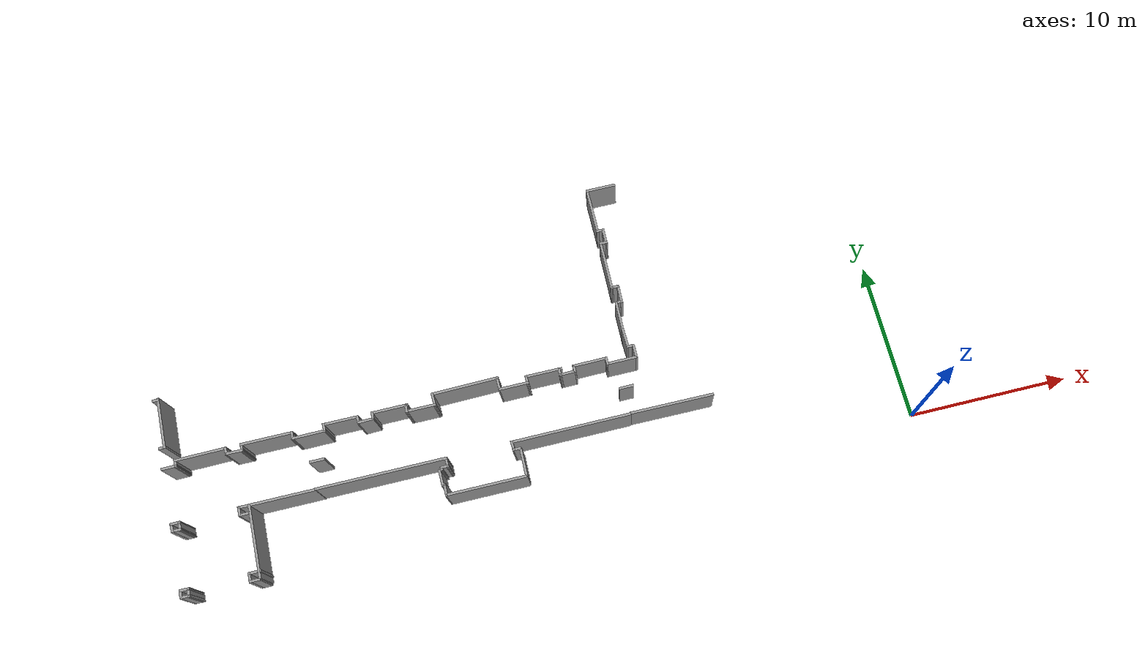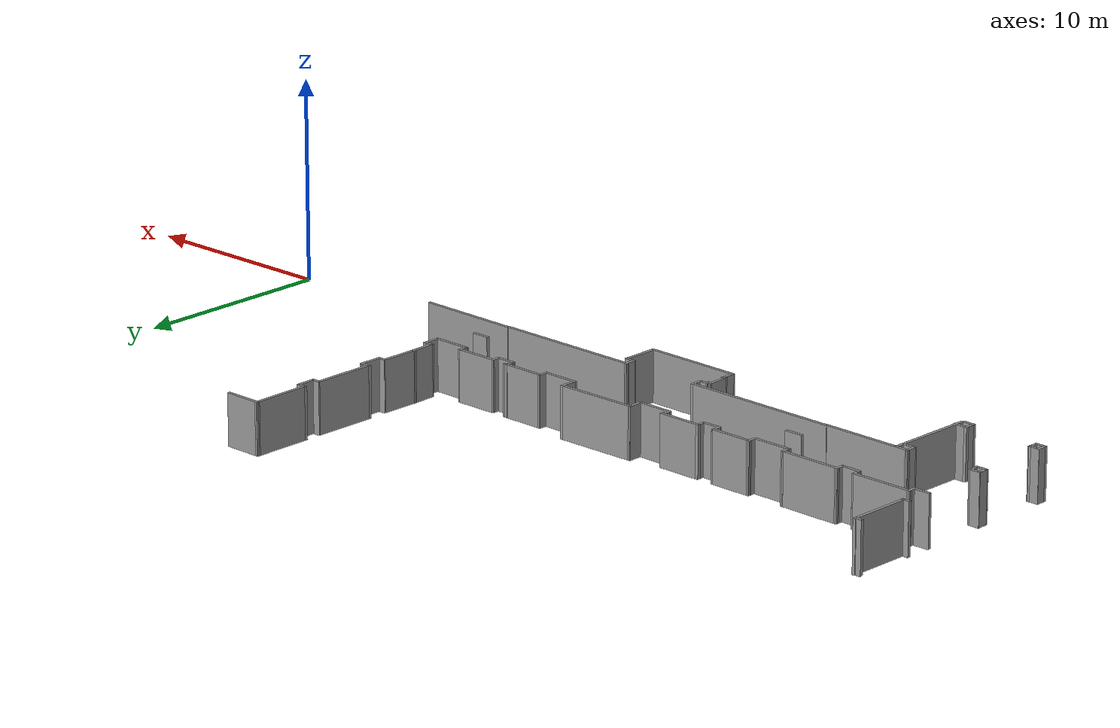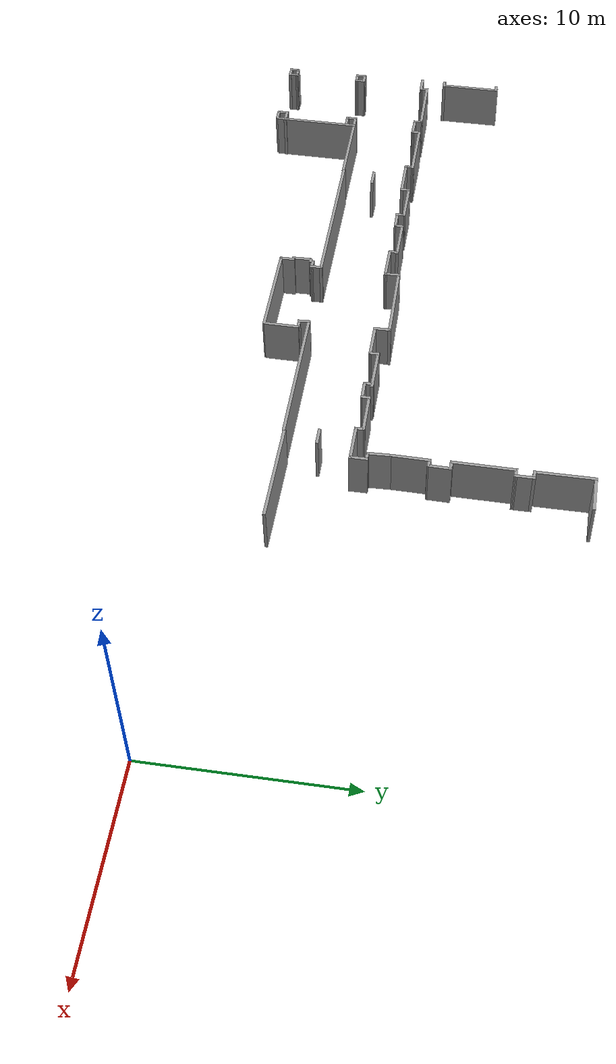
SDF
<sdf version="1.7">
 <model name="TD1-Mapa">
  <pose>-6.249136 -5.50363 0 0 -0 0</pose>
  <link name="Wall_100">
   <collision name="Wall_100_Collision">
    <geometry><box><size>4.617933 0.15 2.5</size></box></geometry>
    <pose>0 0 1.25 0 -0 0</pose>
   </collision>
   <visual name="Wall_100_Visual">
    <pose>0 0 1.25 0 -0 0</pose>
    <geometry><box><size>4.617933 0.15 2.5</size></box></geometry>
    <material>
     <script><uri>file://media/materials/scripts/gazebo.material</uri><name>Gazebo/Grey</name></script>
     <ambient>1 1 1 1</ambient>
    </material>
    <meta><layer>0</layer></meta>
   </visual>
   <pose>-32.01613 9.150732 0 0 -0 -0.0033323</pose>
  </link>
  <link name="Wall_207">
   <collision name="Wall_207_Collision">
    <geometry><box><size>0.4007303 0.15 2.5</size></box></geometry>
    <pose>0 0 1.25 0 -0 0</pose>
   </collision>
   <visual name="Wall_207_Visual">
    <pose>0 0 1.25 0 -0 0</pose>
    <geometry><box><size>0.4007303 0.15 2.5</size></box></geometry>
    <material>
     <script><uri>file://media/materials/scripts/gazebo.material</uri><name>Gazebo/Grey</name></script>
     <ambient>1 1 1 1</ambient>
    </material>
    <meta><layer>0</layer></meta>
   </visual>
   <pose>-38.12083 16.818 0 0 -0 0</pose>
  </link>
  <link name="Wall_211">
   <collision name="Wall_211_Collision">
    <geometry><box><size>3.187537 0.15 2.5</size></box></geometry>
    <pose>0 0 1.25 0 -0 0</pose>
   </collision>
   <visual name="Wall_211_Visual">
    <pose>0 0 1.25 0 -0 0</pose>
    <geometry><box><size>3.187537 0.15 2.5</size></box></geometry>
    <material>
     <script><uri>file://media/materials/scripts/gazebo.material</uri><name>Gazebo/Grey</name></script>
     <ambient>1 1 1 1</ambient>
    </material>
    <meta><layer>0</layer></meta>
   </visual>
   <pose>-37.98273 15.33993 0 0 -0 -1.57083</pose>
  </link>
  <link name="Wall_213">
   <collision name="Wall_213_Collision">
    <geometry><box><size>0.43123433 0.15 2.5</size></box></geometry>
    <pose>0 0 1.25 0 -0 0</pose>
   </collision>
   <visual name="Wall_213_Visual">
    <pose>0 0 1.25 0 -0 0</pose>
    <geometry><box><size>0.43123433 0.15 2.5</size></box></geometry>
    <material>
     <script><uri>file://media/materials/scripts/gazebo.material</uri><name>Gazebo/Grey</name></script>
     <ambient>1 1 1 1</ambient>
    </material>
    <meta><layer>0</layer></meta>
   </visual>
   <pose>-38.11263 13.80983 0 0 -0 3.141539</pose>
  </link>
  <link name="Wall_216">
   <collision name="Wall_216_Collision">
    <geometry><box><size>0.941434 0.15 2.5</size></box></geometry>
    <pose>0 0 1.25 0 -0 0</pose>
   </collision>
   <visual name="Wall_216_Visual">
    <pose>0 0 1.25 0 -0 0</pose>
    <geometry><box><size>0.941434 0.15 2.5</size></box></geometry>
    <material>
     <script><uri>file://media/materials/scripts/gazebo.material</uri><name>Gazebo/Grey</name></script>
     <ambient>1 1 1 1</ambient>
    </material>
    <meta><layer>0</layer></meta>
   </visual>
   <pose>-37.87263 12.52293 0 0 -0 0.0071343</pose>
  </link>
  <link name="Wall_217">
   <collision name="Wall_217_Collision">
    <geometry><box><size>0.4891383 0.15 2.5</size></box></geometry>
    <pose>0 0 1.25 0 -0 0</pose>
   </collision>
   <visual name="Wall_217_Visual">
    <pose>0 0 1.25 0 -0 0</pose>
    <geometry><box><size>0.4891383 0.15 2.5</size></box></geometry>
    <material>
     <script><uri>file://media/materials/scripts/gazebo.material</uri><name>Gazebo/Grey</name></script>
     <ambient>1 1 1 1</ambient>
    </material>
    <meta><layer>0</layer></meta>
   </visual>
   <pose>-37.47973 12.69543 0 0 -0 1.587436</pose>
  </link>
  <link name="Wall_261">
   <collision name="Wall_261_Collision">
    <geometry><box><size>0.6047393 0.15 2.5</size></box></geometry>
    <pose>0 0 1.25 0 -0 0</pose>
   </collision>
   <visual name="Wall_261_Visual">
    <pose>0 0 1.25 0 -0 0</pose>
    <geometry><box><size>0.6047393 0.15 2.5</size></box></geometry>
    <material>
     <script><uri>file://media/materials/scripts/gazebo.material</uri><name>Gazebo/Grey</name></script>
     <ambient>1 1 1 1</ambient>
    </material>
    <meta><layer>0</layer></meta>
   </visual>
   <pose>-37.95843 9.133638 0 0 -0 0</pose>
  </link>
  <link name="Wall_262">
   <collision name="Wall_262_Collision">
    <geometry><box><size>0.5753383 0.15 2.5</size></box></geometry>
    <pose>0 0 1.25 0 -0 0</pose>
   </collision>
   <visual name="Wall_262_Visual">
    <pose>0 0 1.25 0 -0 0</pose>
    <geometry><box><size>0.5753383 0.15 2.5</size></box></geometry>
    <material>
     <script><uri>file://media/materials/scripts/gazebo.material</uri><name>Gazebo/Grey</name></script>
     <ambient>1 1 1 1</ambient>
    </material>
    <meta><layer>0</layer></meta>
   </visual>
   <pose>-37.72253 8.921136 0 0 -0 -1.530832</pose>
  </link>
  <link name="Wall_263">
   <collision name="Wall_263_Collision">
    <geometry><box><size>0.6177323 0.15 2.5</size></box></geometry>
    <pose>0 0 1.25 0 -0 0</pose>
   </collision>
   <visual name="Wall_263_Visual">
    <pose>0 0 1.25 0 -0 0</pose>
    <geometry><box><size>0.6177323 0.15 2.5</size></box></geometry>
    <material>
     <script><uri>file://media/materials/scripts/gazebo.material</uri><name>Gazebo/Grey</name></script>
     <ambient>1 1 1 1</ambient>
    </material>
    <meta><layer>0</layer></meta>
   </visual>
   <pose>-37.94783 8.706531 0 0 -0 -3.13253</pose>
  </link>
  <link name="Wall_264">
   <collision name="Wall_264_Collision">
    <geometry><box><size>0.566734 0.15 2.5</size></box></geometry>
    <pose>0 0 1.25 0 -0 0</pose>
   </collision>
   <visual name="Wall_264_Visual">
    <pose>0 0 1.25 0 -0 0</pose>
    <geometry><box><size>0.566734 0.15 2.5</size></box></geometry>
    <material>
     <script><uri>file://media/materials/scripts/gazebo.material</uri><name>Gazebo/Grey</name></script>
     <ambient>1 1 1 1</ambient>
    </material>
    <meta><layer>0</layer></meta>
   </visual>
   <pose>-38.18793 8.908431 0 0 -0 1.60143</pose>
  </link>
  <link name="Wall_267">
   <collision name="Wall_267_Collision">
    <geometry><box><size>0.6025353 0.15 2.5</size></box></geometry>
    <pose>0 0 1.25 0 -0 0</pose>
   </collision>
   <visual name="Wall_267_Visual">
    <pose>0 0 1.25 0 -0 0</pose>
    <geometry><box><size>0.6025353 0.15 2.5</size></box></geometry>
    <material>
     <script><uri>file://media/materials/scripts/gazebo.material</uri><name>Gazebo/Grey</name></script>
     <ambient>1 1 1 1</ambient>
    </material>
    <meta><layer>0</layer></meta>
   </visual>
   <pose>-37.956 5.188936 0 0 -0 -0.0142383</pose>
  </link>
  <link name="Wall_268">
   <collision name="Wall_268_Collision">
    <geometry><box><size>0.5573303 0.15 2.5</size></box></geometry>
    <pose>0 0 1.25 0 -0 0</pose>
   </collision>
   <visual name="Wall_268_Visual">
    <pose>0 0 1.25 0 -0 0</pose>
    <geometry><box><size>0.5573303 0.15 2.5</size></box></geometry>
    <material>
     <script><uri>file://media/materials/scripts/gazebo.material</uri><name>Gazebo/Grey</name></script>
     <ambient>1 1 1 1</ambient>
    </material>
    <meta><layer>0</layer></meta>
   </visual>
   <pose>-37.733 4.98213 0 0 -0 -1.586637</pose>
  </link>
  <link name="Wall_269">
   <collision name="Wall_269_Collision">
    <geometry><box><size>0.6157303 0.15 2.5</size></box></geometry>
    <pose>0 0 1.25 0 -0 0</pose>
   </collision>
   <visual name="Wall_269_Visual">
    <pose>0 0 1.25 0 -0 0</pose>
    <geometry><box><size>0.6157303 0.15 2.5</size></box></geometry>
    <material>
     <script><uri>file://media/materials/scripts/gazebo.material</uri><name>Gazebo/Grey</name></script>
     <ambient>1 1 1 1</ambient>
    </material>
    <meta><layer>0</layer></meta>
   </visual>
   <pose>-37.96263 4.784031 0 0 -0 3.117737</pose>
  </link>
  <link name="Wall_270">
   <collision name="Wall_270_Collision">
    <geometry><box><size>0.5479363 0.15 2.5</size></box></geometry>
    <pose>0 0 1.25 0 -0 0</pose>
   </collision>
   <visual name="Wall_270_Visual">
    <pose>0 0 1.25 0 -0 0</pose>
    <geometry><box><size>0.5479363 0.15 2.5</size></box></geometry>
    <material>
     <script><uri>file://media/materials/scripts/gazebo.material</uri><name>Gazebo/Grey</name></script>
     <ambient>1 1 1 1</ambient>
    </material>
    <meta><layer>0</layer></meta>
   </visual>
   <pose>-38.19043 4.988534 0 0 -0 1.555237</pose>
  </link>
  <link name="Wall_333">
   <collision name="Wall_333_Collision">
    <geometry><box><size>3.130631 0.15 2.5</size></box></geometry>
    <pose>0 0 1.25 0 -0 0</pose>
   </collision>
   <visual name="Wall_333_Visual">
    <pose>0 0 1.25 0 -0 0</pose>
    <geometry><box><size>3.130631 0.15 2.5</size></box></geometry>
    <material>
     <script><uri>file://media/materials/scripts/gazebo.material</uri><name>Gazebo/Grey</name></script>
     <ambient>1 1 1 1</ambient>
    </material>
    <meta><layer>0</layer></meta>
   </visual>
   <pose>-35.99233 12.87563 0 0 -0 0.0071313</pose>
  </link>
  <link name="Wall_334">
   <collision name="Wall_334_Collision">
    <geometry><box><size>0.4977373 0.15 2.5</size></box></geometry>
    <pose>0 0 1.25 0 -0 0</pose>
   </collision>
   <visual name="Wall_334_Visual">
    <pose>0 0 1.25 0 -0 0</pose>
    <geometry><box><size>0.4977373 0.15 2.5</size></box></geometry>
    <material>
     <script><uri>file://media/materials/scripts/gazebo.material</uri><name>Gazebo/Grey</name></script>
     <ambient>1 1 1 1</ambient>
    </material>
    <meta><layer>0</layer></meta>
   </visual>
   <pose>-34.48553 12.71313 0 0 -0 -1.475835</pose>
  </link>
  <link name="Wall_335">
   <collision name="Wall_335_Collision">
    <geometry><box><size>1.0743333 0.15 2.5</size></box></geometry>
    <pose>0 0 1.25 0 -0 0</pose>
   </collision>
   <visual name="Wall_335_Visual">
    <pose>0 0 1.25 0 -0 0</pose>
    <geometry><box><size>1.0743333 0.15 2.5</size></box></geometry>
    <material>
     <script><uri>file://media/materials/scripts/gazebo.material</uri><name>Gazebo/Grey</name></script>
     <ambient>1 1 1 1</ambient>
    </material>
    <meta><layer>0</layer></meta>
   </visual>
   <pose>-34.00743 12.53173 0 0 -0 -0.0178353</pose>
  </link>
  <link name="Wall_336">
   <collision name="Wall_336_Collision">
    <geometry><box><size>0.5210323 0.15 2.5</size></box></geometry>
    <pose>0 0 1.25 0 -0 0</pose>
   </collision>
   <visual name="Wall_336_Visual">
    <pose>0 0 1.25 0 -0 0</pose>
    <geometry><box><size>0.5210323 0.15 2.5</size></box></geometry>
    <material>
     <script><uri>file://media/materials/scripts/gazebo.material</uri><name>Gazebo/Grey</name></script>
     <ambient>1 1 1 1</ambient>
    </material>
    <meta><layer>0</layer></meta>
   </visual>
   <pose>-33.54993 12.70893 0 0 -0 1.593032</pose>
  </link>
  <link name="Wall_337">
   <collision name="Wall_337_Collision">
    <geometry><box><size>3.175233 0.15 2.5</size></box></geometry>
    <pose>0 0 1.25 0 -0 0</pose>
   </collision>
   <visual name="Wall_337_Visual">
    <pose>0 0 1.25 0 -0 0</pose>
    <geometry><box><size>3.175233 0.15 2.5</size></box></geometry>
    <material>
     <script><uri>file://media/materials/scripts/gazebo.material</uri><name>Gazebo/Grey</name></script>
     <ambient>1 1 1 1</ambient>
    </material>
    <meta><layer>0</layer></meta>
   </visual>
   <pose>-32.04143 12.89033 0 0 -0 -0.0027323</pose>
  </link>
  <link name="Wall_338">
   <collision name="Wall_338_Collision">
    <geometry><box><size>0.5127383 0.15 2.5</size></box></geometry>
    <pose>0 0 1.25 0 -0 0</pose>
   </collision>
   <visual name="Wall_338_Visual">
    <pose>0 0 1.25 0 -0 0</pose>
    <geometry><box><size>0.5127383 0.15 2.5</size></box></geometry>
    <material>
     <script><uri>file://media/materials/scripts/gazebo.material</uri><name>Gazebo/Grey</name></script>
     <ambient>1 1 1 1</ambient>
    </material>
    <meta><layer>0</layer></meta>
   </visual>
   <pose>-30.533 12.70483 0 0 -0 -1.593532</pose>
  </link>
  <link name="Wall_339">
   <collision name="Wall_339_Collision">
    <geometry><box><size>2.0740363 0.15 2.5</size></box></geometry>
    <pose>0 0 1.25 0 -0 0</pose>
   </collision>
   <visual name="Wall_339_Visual">
    <pose>0 0 1.25 0 -0 0</pose>
    <geometry><box><size>2.0740363 0.15 2.5</size></box></geometry>
    <material>
     <script><uri>file://media/materials/scripts/gazebo.material</uri><name>Gazebo/Grey</name></script>
     <ambient>1 1 1 1</ambient>
    </material>
    <meta><layer>0</layer></meta>
   </visual>
   <pose>-29.57683 12.52763 0 0 -0 0.0042393</pose>
  </link>
  <link name="Wall_340">
   <collision name="Wall_340_Collision">
    <geometry><box><size>0.5374323 0.15 2.5</size></box></geometry>
    <pose>0 0 1.25 0 -0 0</pose>
   </collision>
   <visual name="Wall_340_Visual">
    <pose>0 0 1.25 0 -0 0</pose>
    <geometry><box><size>0.5374323 0.15 2.5</size></box></geometry>
    <material>
     <script><uri>file://media/materials/scripts/gazebo.material</uri><name>Gazebo/Grey</name></script>
     <ambient>1 1 1 1</ambient>
    </material>
    <meta><layer>0</layer></meta>
   </visual>
   <pose>-28.61653 12.72543 0 0 -0 1.57083</pose>
  </link>
  <link name="Wall_341">
   <collision name="Wall_341_Collision">
    <geometry><box><size>2.186034 0.15 2.5</size></box></geometry>
    <pose>0 0 1.25 0 -0 0</pose>
   </collision>
   <visual name="Wall_341_Visual">
    <pose>0 0 1.25 0 -0 0</pose>
    <geometry><box><size>2.186034 0.15 2.5</size></box></geometry>
    <material>
     <script><uri>file://media/materials/scripts/gazebo.material</uri><name>Gazebo/Grey</name></script>
     <ambient>1 1 1 1</ambient>
    </material>
    <meta><layer>0</layer></meta>
   </visual>
   <pose>-27.59853 12.915 0 0 -0 -0.0040343</pose>
  </link>
  <link name="Wall_342">
   <collision name="Wall_342_Collision">
    <geometry><box><size>0.5127383 0.15 2.5</size></box></geometry>
    <pose>0 0 1.25 0 -0 0</pose>
   </collision>
   <visual name="Wall_342_Visual">
    <pose>0 0 1.25 0 -0 0</pose>
    <geometry><box><size>0.5127383 0.15 2.5</size></box></geometry>
    <material>
     <script><uri>file://media/materials/scripts/gazebo.material</uri><name>Gazebo/Grey</name></script>
     <ambient>1 1 1 1</ambient>
    </material>
    <meta><layer>0</layer></meta>
   </visual>
   <pose>-26.57223 12.72953 0 0 -0 -1.525337</pose>
  </link>
  <link name="Wall_343">
   <collision name="Wall_343_Collision">
    <geometry><box><size>0.9909343 0.15 2.5</size></box></geometry>
    <pose>0 0 1.25 0 -0 0</pose>
   </collision>
   <visual name="Wall_343_Visual">
    <pose>0 0 1.25 0 -0 0</pose>
    <geometry><box><size>0.9909343 0.15 2.5</size></box></geometry>
    <material>
     <script><uri>file://media/materials/scripts/gazebo.material</uri><name>Gazebo/Grey</name></script>
     <ambient>1 1 1 1</ambient>
    </material>
    <meta><layer>0</layer></meta>
   </visual>
   <pose>-26.14363 12.55643 0 0 -0 0.0196303</pose>
  </link>
  <link name="Wall_345">
   <collision name="Wall_345_Collision">
    <geometry><box><size>0.9276393 0.15 2.5</size></box></geometry>
    <pose>0 0 1.25 0 -0 0</pose>
   </collision>
   <visual name="Wall_345_Visual">
    <pose>0 0 1.25 0 -0 0</pose>
    <geometry><box><size>0.9276393 0.15 2.5</size></box></geometry>
    <material>
     <script><uri>file://media/materials/scripts/gazebo.material</uri><name>Gazebo/Grey</name></script>
     <ambient>1 1 1 1</ambient>
    </material>
    <meta><layer>0</layer></meta>
   </visual>
   <pose>-29.35363 10.84293 0 0 -0 -0.0060363</pose>
  </link>
  <link name="Wall_347">
   <collision name="Wall_347_Collision">
    <geometry><box><size>7.912739 0.15 2.5</size></box></geometry>
    <pose>0 0 1.25 0 -0 0</pose>
   </collision>
   <visual name="Wall_347_Visual">
    <pose>0 0 1.25 0 -0 0</pose>
    <geometry><box><size>7.912739 0.15 2.5</size></box></geometry>
    <material>
     <script><uri>file://media/materials/scripts/gazebo.material</uri><name>Gazebo/Grey</name></script>
     <ambient>1 1 1 1</ambient>
    </material>
    <meta><layer>0</layer></meta>
   </visual>
   <pose>-25.82893 9.160038 0 0 -0 -0.002737</pose>
  </link>
  <link name="Wall_349">
   <collision name="Wall_349_Collision">
    <geometry><box><size>0.6406383 0.15 2.5</size></box></geometry>
    <pose>0 0 1.25 0 -0 0</pose>
   </collision>
   <visual name="Wall_349_Visual">
    <pose>0 0 1.25 0 -0 0</pose>
    <geometry><box><size>0.6406383 0.15 2.5</size></box></geometry>
    <material>
     <script><uri>file://media/materials/scripts/gazebo.material</uri><name>Gazebo/Grey</name></script>
     <ambient>1 1 1 1</ambient>
    </material>
    <meta><layer>0</layer></meta>
   </visual>
   <pose>-21.94593 8.905636 0 0 -0 -1.548538</pose>
  </link>
  <link name="Wall_350">
   <collision name="Wall_350_Collision">
    <geometry><box><size>0.5307353 0.15 2.5</size></box></geometry>
    <pose>0 0 1.25 0 -0 0</pose>
   </collision>
   <visual name="Wall_350_Visual">
    <pose>0 0 1.25 0 -0 0</pose>
    <geometry><box><size>0.5307353 0.15 2.5</size></box></geometry>
    <material>
     <script><uri>file://media/materials/scripts/gazebo.material</uri><name>Gazebo/Grey</name></script>
     <ambient>1 1 1 1</ambient>
    </material>
    <meta><layer>0</layer></meta>
   </visual>
   <pose>-22.13083 8.658937 0 0 -0 -3.134231</pose>
  </link>
  <link name="Wall_351">
   <collision name="Wall_351_Collision">
    <geometry><box><size>0.2639343 0.15 2.5</size></box></geometry>
    <pose>0 0 1.25 0 -0 0</pose>
   </collision>
   <visual name="Wall_351_Visual">
    <pose>0 0 1.25 0 -0 0</pose>
    <geometry><box><size>0.2639343 0.15 2.5</size></box></geometry>
    <material>
     <script><uri>file://media/materials/scripts/gazebo.material</uri><name>Gazebo/Grey</name></script>
     <ambient>1 1 1 1</ambient>
    </material>
    <meta><layer>0</layer></meta>
   </visual>
   <pose>-22.32113 8.600636 0 0 -0 -1.57083</pose>
  </link>
  <link name="Wall_352">
   <collision name="Wall_352_Collision">
    <geometry><box><size>0.2477303 0.15 2.5</size></box></geometry>
    <pose>0 0 1.25 0 -0 0</pose>
   </collision>
   <visual name="Wall_352_Visual">
    <pose>0 0 1.25 0 -0 0</pose>
    <geometry><box><size>0.2477303 0.15 2.5</size></box></geometry>
    <material>
     <script><uri>file://media/materials/scripts/gazebo.material</uri><name>Gazebo/Grey</name></script>
     <ambient>1 1 1 1</ambient>
    </material>
    <meta><layer>0</layer></meta>
   </visual>
   <pose>-22.36993 8.546436 0 0 -0 3.086039</pose>
  </link>
  <link name="Wall_354">
   <collision name="Wall_354_Collision">
    <geometry><box><size>1.028834 0.15 2.5</size></box></geometry>
    <pose>0 0 1.25 0 -0 0</pose>
   </collision>
   <visual name="Wall_354_Visual">
    <pose>0 0 1.25 0 -0 0</pose>
    <geometry><box><size>1.028834 0.15 2.5</size></box></geometry>
    <material>
     <script><uri>file://media/materials/scripts/gazebo.material</uri><name>Gazebo/Grey</name></script>
     <ambient>1 1 1 1</ambient>
    </material>
    <meta><layer>0</layer></meta>
   </visual>
   <pose>-22.45123 8.055936 0 0 -0 -1.546131</pose>
  </link>
  <link name="Wall_355">
   <collision name="Wall_355_Collision">
    <geometry><box><size>0.2475353 0.15 2.5</size></box></geometry>
    <pose>0 0 1.25 0 -0 0</pose>
   </collision>
   <visual name="Wall_355_Visual">
    <pose>0 0 1.25 0 -0 0</pose>
    <geometry><box><size>0.2475353 0.15 2.5</size></box></geometry>
    <material>
     <script><uri>file://media/materials/scripts/gazebo.material</uri><name>Gazebo/Grey</name></script>
     <ambient>1 1 1 1</ambient>
    </material>
    <meta><layer>0</layer></meta>
   </visual>
   <pose>-22.39163 7.616934 0 0 -0 0</pose>
  </link>
  <link name="Wall_356">
   <collision name="Wall_356_Collision">
    <geometry><box><size>0.7895343 0.15 2.5</size></box></geometry>
    <pose>0 0 1.25 0 -0 0</pose>
   </collision>
   <visual name="Wall_356_Visual">
    <pose>0 0 1.25 0 -0 0</pose>
    <geometry><box><size>0.7895343 0.15 2.5</size></box></geometry>
    <material>
     <script><uri>file://media/materials/scripts/gazebo.material</uri><name>Gazebo/Grey</name></script>
     <ambient>1 1 1 1</ambient>
    </material>
    <meta><layer>0</layer></meta>
   </visual>
   <pose>-22.34283 7.297137 0 0 -0 -1.57083</pose>
  </link>
  <link name="Wall_357">
   <collision name="Wall_357_Collision">
    <geometry><box><size>4.914135 0.15 2.5</size></box></geometry>
    <pose>0 0 1.25 0 -0 0</pose>
   </collision>
   <visual name="Wall_357_Visual">
    <pose>0 0 1.25 0 -0 0</pose>
    <geometry><box><size>4.914135 0.15 2.5</size></box></geometry>
    <material>
     <script><uri>file://media/materials/scripts/gazebo.material</uri><name>Gazebo/Grey</name></script>
     <ambient>1 1 1 1</ambient>
    </material>
    <meta><layer>0</layer></meta>
   </visual>
   <pose>-19.96083 6.966535 0 0 -0 -0.0045353</pose>
  </link>
  <link name="Wall_359">
   <collision name="Wall_359_Collision">
    <geometry><box><size>1.765137 0.15 2.5</size></box></geometry>
    <pose>0 0 1.25 0 -0 0</pose>
   </collision>
   <visual name="Wall_359_Visual">
    <pose>0 0 1.25 0 -0 0</pose>
    <geometry><box><size>1.765137 0.15 2.5</size></box></geometry>
    <material>
     <script><uri>file://media/materials/scripts/gazebo.material</uri><name>Gazebo/Grey</name></script>
     <ambient>1 1 1 1</ambient>
    </material>
    <meta><layer>0</layer></meta>
   </visual>
   <pose>-17.54983 7.828739 0 0 -0 1.564038</pose>
  </link>
  <link name="Wall_361">
   <collision name="Wall_361_Collision">
    <geometry><box><size>0.5239373 0.15 2.5</size></box></geometry>
    <pose>0 0 1.25 0 -0 0</pose>
   </collision>
   <visual name="Wall_361_Visual">
    <pose>0 0 1.25 0 -0 0</pose>
    <geometry><box><size>0.5239373 0.15 2.5</size></box></geometry>
    <material>
     <script><uri>file://media/materials/scripts/gazebo.material</uri><name>Gazebo/Grey</name></script>
     <ambient>1 1 1 1</ambient>
    </material>
    <meta><layer>0</layer></meta>
   </visual>
   <pose>-17.76583 8.686937 0 0 -0 3.141539</pose>
  </link>
  <link name="Wall_362">
   <collision name="Wall_362_Collision">
    <geometry><box><size>0.6302393 0.15 2.5</size></box></geometry>
    <pose>0 0 1.25 0 -0 0</pose>
   </collision>
   <visual name="Wall_362_Visual">
    <pose>0 0 1.25 0 -0 0</pose>
    <geometry><box><size>0.6302393 0.15 2.5</size></box></geometry>
    <material>
     <script><uri>file://media/materials/scripts/gazebo.material</uri><name>Gazebo/Grey</name></script>
     <ambient>1 1 1 1</ambient>
    </material>
    <meta><layer>0</layer></meta>
   </visual>
   <pose>-17.96523 8.926934 0 0 -0 1.62273</pose>
  </link>
  <link name="Wall_363">
   <collision name="Wall_363_Collision">
    <geometry><box><size>7.367639 0.15 2.5</size></box></geometry>
    <pose>0 0 1.25 0 -0 0</pose>
   </collision>
   <visual name="Wall_363_Visual">
    <pose>0 0 1.25 0 -0 0</pose>
    <geometry><box><size>7.367639 0.15 2.5</size></box></geometry>
    <material>
     <script><uri>file://media/materials/scripts/gazebo.material</uri><name>Gazebo/Grey</name></script>
     <ambient>1 1 1 1</ambient>
    </material>
    <meta><layer>0</layer></meta>
   </visual>
   <pose>-14.36893 9.163739 0 0 -0 -0.0008363</pose>
  </link>
  <link name="Wall_365">
   <collision name="Wall_365_Collision">
    <geometry><box><size>5.124137 0.15 2.5</size></box></geometry>
    <pose>0 0 1.25 0 -0 0</pose>
   </collision>
   <visual name="Wall_365_Visual">
    <pose>0 0 1.25 0 -0 0</pose>
    <geometry><box><size>5.124137 0.15 2.5</size></box></geometry>
    <material>
     <script><uri>file://media/materials/scripts/gazebo.material</uri><name>Gazebo/Grey</name></script>
     <ambient>1 1 1 1</ambient>
    </material>
    <meta><layer>0</layer></meta>
   </visual>
   <pose>-8.151239 9.176637 0 0 -0 -0.0087373</pose>
  </link>
  <link name="Wall_369">
   <collision name="Wall_369_Collision">
    <geometry><box><size>0.4260383 0.15 2.5</size></box></geometry>
    <pose>0 0 1.25 0 -0 0</pose>
   </collision>
   <visual name="Wall_369_Visual">
    <pose>0 0 1.25 0 -0 0</pose>
    <geometry><box><size>0.4260383 0.15 2.5</size></box></geometry>
    <material>
     <script><uri>file://media/materials/scripts/gazebo.material</uri><name>Gazebo/Grey</name></script>
     <ambient>1 1 1 1</ambient>
    </material>
    <meta><layer>0</layer></meta>
   </visual>
   <pose>-25.68453 12.78953 0 0 -0 1.57083</pose>
  </link>
  <link name="Wall_370">
   <collision name="Wall_370_Collision">
    <geometry><box><size>2.243631 0.15 2.5</size></box></geometry>
    <pose>0 0 1.25 0 -0 0</pose>
   </collision>
   <visual name="Wall_370_Visual">
    <pose>0 0 1.25 0 -0 0</pose>
    <geometry><box><size>2.243631 0.15 2.5</size></box></geometry>
    <material>
     <script><uri>file://media/materials/scripts/gazebo.material</uri><name>Gazebo/Grey</name></script>
     <ambient>1 1 1 1</ambient>
    </material>
    <meta><layer>0</layer></meta>
   </visual>
   <pose>-24.63773 12.92743 0 0 -0 0</pose>
  </link>
  <link name="Wall_372">
   <collision name="Wall_372_Collision">
    <geometry><box><size>0.5127383 0.15 2.5</size></box></geometry>
    <pose>0 0 1.25 0 -0 0</pose>
   </collision>
   <visual name="Wall_372_Visual">
    <pose>0 0 1.25 0 -0 0</pose>
    <geometry><box><size>0.5127383 0.15 2.5</size></box></geometry>
    <material>
     <script><uri>file://media/materials/scripts/gazebo.material</uri><name>Gazebo/Grey</name></script>
     <ambient>1 1 1 1</ambient>
    </material>
    <meta><layer>0</layer></meta>
   </visual>
   <pose>-23.65233 12.71863 0 0 -0 -1.593532</pose>
  </link>
  <link name="Wall_373">
   <collision name="Wall_373_Collision">
    <geometry><box><size>1.856332 0.15 2.5</size></box></geometry>
    <pose>0 0 1.25 0 -0 0</pose>
   </collision>
   <visual name="Wall_373_Visual">
    <pose>0 0 1.25 0 -0 0</pose>
    <geometry><box><size>1.856332 0.15 2.5</size></box></geometry>
    <material>
     <script><uri>file://media/materials/scripts/gazebo.material</uri><name>Gazebo/Grey</name></script>
     <ambient>1 1 1 1</ambient>
    </material>
    <meta><layer>0</layer></meta>
   </visual>
   <pose>-22.80323 12.53313 0 0 -0 -0.0048333</pose>
  </link>
  <link name="Wall_374">
   <collision name="Wall_374_Collision">
    <geometry><box><size>0.8367393 0.15 2.5</size></box></geometry>
    <pose>0 0 1.25 0 -0 0</pose>
   </collision>
   <visual name="Wall_374_Visual">
    <pose>0 0 1.25 0 -0 0</pose>
    <geometry><box><size>0.8367393 0.15 2.5</size></box></geometry>
    <material>
     <script><uri>file://media/materials/scripts/gazebo.material</uri><name>Gazebo/Grey</name></script>
     <ambient>1 1 1 1</ambient>
    </material>
    <meta><layer>0</layer></meta>
   </visual>
   <pose>-21.96173 12.87223 0 0 -0 1.604632</pose>
  </link>
  <link name="Wall_376">
   <collision name="Wall_376_Collision">
    <geometry><box><size>0.8860313 0.15 2.5</size></box></geometry>
    <pose>0 0 1.25 0 -0 0</pose>
   </collision>
   <visual name="Wall_376_Visual">
    <pose>0 0 1.25 0 -0 0</pose>
    <geometry><box><size>0.8860313 0.15 2.5</size></box></geometry>
    <material>
     <script><uri>file://media/materials/scripts/gazebo.material</uri><name>Gazebo/Grey</name></script>
     <ambient>1 1 1 1</ambient>
    </material>
    <meta><layer>0</layer></meta>
   </visual>
   <pose>-17.98453 12.90523 0 0 -0 -1.550434</pose>
  </link>
  <link name="Wall_377">
   <collision name="Wall_377_Collision">
    <geometry><box><size>1.85633 0.15 2.5</size></box></geometry>
    <pose>0 0 1.25 0 -0 0</pose>
   </collision>
   <visual name="Wall_377_Visual">
    <pose>0 0 1.25 0 -0 0</pose>
    <geometry><box><size>1.85633 0.15 2.5</size></box></geometry>
    <material>
     <script><uri>file://media/materials/scripts/gazebo.material</uri><name>Gazebo/Grey</name></script>
     <ambient>1 1 1 1</ambient>
    </material>
    <meta><layer>0</layer></meta>
   </visual>
   <pose>-17.12383 12.53723 0 0 -0 0</pose>
  </link>
  <link name="Wall_378">
   <collision name="Wall_378_Collision">
    <geometry><box><size>0.5421323 0.15 2.5</size></box></geometry>
    <pose>0 0 1.25 0 -0 0</pose>
   </collision>
   <visual name="Wall_378_Visual">
    <pose>0 0 1.25 0 -0 0</pose>
    <geometry><box><size>0.5421323 0.15 2.5</size></box></geometry>
    <material>
     <script><uri>file://media/materials/scripts/gazebo.material</uri><name>Gazebo/Grey</name></script>
     <ambient>1 1 1 1</ambient>
    </material>
    <meta><layer>0</layer></meta>
   </visual>
   <pose>-16.273 12.73333 0 0 -0 1.582733</pose>
  </link>
  <link name="Wall_379">
   <collision name="Wall_379_Collision">
    <geometry><box><size>2.29323 0.15 2.5</size></box></geometry>
    <pose>0 0 1.25 0 -0 0</pose>
   </collision>
   <visual name="Wall_379_Visual">
    <pose>0 0 1.25 0 -0 0</pose>
    <geometry><box><size>2.29323 0.15 2.5</size></box></geometry>
    <material>
     <script><uri>file://media/materials/scripts/gazebo.material</uri><name>Gazebo/Grey</name></script>
     <ambient>1 1 1 1</ambient>
    </material>
    <meta><layer>0</layer></meta>
   </visual>
   <pose>-15.20023 12.92523 0 0 -0 -0.0038343</pose>
  </link>
  <link name="Wall_385">
   <collision name="Wall_385_Collision">
    <geometry><box><size>0.5386353 0.15 2.5</size></box></geometry>
    <pose>0 0 1.25 0 -0 0</pose>
   </collision>
   <visual name="Wall_385_Visual">
    <pose>0 0 1.25 0 -0 0</pose>
    <geometry><box><size>0.5386353 0.15 2.5</size></box></geometry>
    <material>
     <script><uri>file://media/materials/scripts/gazebo.material</uri><name>Gazebo/Grey</name></script>
     <ambient>1 1 1 1</ambient>
    </material>
    <meta><layer>0</layer></meta>
   </visual>
   <pose>-14.24033 12.74083 0 0 -0 -1.57083</pose>
  </link>
  <link name="Wall_386">
   <collision name="Wall_386_Collision">
    <geometry><box><size>1.050535 0.15 2.5</size></box></geometry>
    <pose>0 0 1.25 0 -0 0</pose>
   </collision>
   <visual name="Wall_386_Visual">
    <pose>0 0 1.25 0 -0 0</pose>
    <geometry><box><size>1.050535 0.15 2.5</size></box></geometry>
    <material>
     <script><uri>file://media/materials/scripts/gazebo.material</uri><name>Gazebo/Grey</name></script>
     <ambient>1 1 1 1</ambient>
    </material>
    <meta><layer>0</layer></meta>
   </visual>
   <pose>-13.79 12.55133 0 0 -0 0.0105323</pose>
  </link>
  <link name="Wall_387">
   <collision name="Wall_387_Collision">
    <geometry><box><size>0.4913393 0.15 2.5</size></box></geometry>
    <pose>0 0 1.25 0 -0 0</pose>
   </collision>
   <visual name="Wall_387_Visual">
    <pose>0 0 1.25 0 -0 0</pose>
    <geometry><box><size>0.4913393 0.15 2.5</size></box></geometry>
    <material>
     <script><uri>file://media/materials/scripts/gazebo.material</uri><name>Gazebo/Grey</name></script>
     <ambient>1 1 1 1</ambient>
    </material>
    <meta><layer>0</layer></meta>
   </visual>
   <pose>-13.33973 12.72663 0 0 -0 1.57083</pose>
  </link>
  <link name="Wall_388">
   <collision name="Wall_388_Collision">
    <geometry><box><size>2.169135 0.15 2.5</size></box></geometry>
    <pose>0 0 1.25 0 -0 0</pose>
   </collision>
   <visual name="Wall_388_Visual">
    <pose>0 0 1.25 0 -0 0</pose>
    <geometry><box><size>2.169135 0.15 2.5</size></box></geometry>
    <material>
     <script><uri>file://media/materials/scripts/gazebo.material</uri><name>Gazebo/Grey</name></script>
     <ambient>1 1 1 1</ambient>
    </material>
    <meta><layer>0</layer></meta>
   </visual>
   <pose>-12.33023 12.902 0 0 -0 0.0046393</pose>
  </link>
  <link name="Wall_389">
   <collision name="Wall_389_Collision">
    <geometry><box><size>0.5102313 0.15 2.5</size></box></geometry>
    <pose>0 0 1.25 0 -0 0</pose>
   </collision>
   <visual name="Wall_389_Visual">
    <pose>0 0 1.25 0 -0 0</pose>
    <geometry><box><size>0.5102313 0.15 2.5</size></box></geometry>
    <material>
     <script><uri>file://media/materials/scripts/gazebo.material</uri><name>Gazebo/Grey</name></script>
     <ambient>1 1 1 1</ambient>
    </material>
    <meta><layer>0</layer></meta>
   </visual>
   <pose>-11.31593 12.72663 0 0 -0 -1.544439</pose>
  </link>
  <link name="Wall_390">
   <collision name="Wall_390_Collision">
    <geometry><box><size>1.941632 0.15 2.5</size></box></geometry>
    <pose>0 0 1.25 0 -0 0</pose>
   </collision>
   <visual name="Wall_390_Visual">
    <pose>0 0 1.25 0 -0 0</pose>
    <geometry><box><size>1.941632 0.15 2.5</size></box></geometry>
    <material>
     <script><uri>file://media/materials/scripts/gazebo.material</uri><name>Gazebo/Grey</name></script>
     <ambient>1 1 1 1</ambient>
    </material>
    <meta><layer>0</layer></meta>
   </visual>
   <pose>-10.41533 12.54653 0 0 -0 0</pose>
  </link>
  <link name="Wall_391">
   <collision name="Wall_391_Collision">
    <geometry><box><size>0.9084313 0.15 2.5</size></box></geometry>
    <pose>0 0 1.25 0 -0 0</pose>
   </collision>
   <visual name="Wall_391_Visual">
    <pose>0 0 1.25 0 -0 0</pose>
    <geometry><box><size>0.9084313 0.15 2.5</size></box></geometry>
    <material>
     <script><uri>file://media/materials/scripts/gazebo.material</uri><name>Gazebo/Grey</name></script>
     <ambient>1 1 1 1</ambient>
    </material>
    <meta><layer>0</layer></meta>
   </visual>
   <pose>-9.519439 12.92573 0 0 -0 1.57083</pose>
  </link>
  <link name="Wall_392">
   <collision name="Wall_392_Collision">
    <geometry><box><size>0.491236 0.15 2.5</size></box></geometry>
    <pose>0 0 1.25 0 -0 0</pose>
   </collision>
   <visual name="Wall_392_Visual">
    <pose>0 0 1.25 0 -0 0</pose>
    <geometry><box><size>0.491236 0.15 2.5</size></box></geometry>
    <material>
     <script><uri>file://media/materials/scripts/gazebo.material</uri><name>Gazebo/Grey</name></script>
     <ambient>1 1 1 1</ambient>
    </material>
    <meta><layer>0</layer></meta>
   </visual>
   <pose>-9.690133 13.30493 0 0 -0 3.141539</pose>
  </link>
  <link name="Wall_393">
   <collision name="Wall_393_Collision">
    <geometry><box><size>1.288137 0.15 2.5</size></box></geometry>
    <pose>0 0 1.25 0 -0 0</pose>
   </collision>
   <visual name="Wall_393_Visual">
    <pose>0 0 1.25 0 -0 0</pose>
    <geometry><box><size>1.288137 0.15 2.5</size></box></geometry>
    <material>
     <script><uri>file://media/materials/scripts/gazebo.material</uri><name>Gazebo/Grey</name></script>
     <ambient>1 1 1 1</ambient>
    </material>
    <meta><layer>0</layer></meta>
   </visual>
   <pose>-9.879731 13.87363 0 0 -0 1.604132</pose>
  </link>
  <link name="Wall_395">
   <collision name="Wall_395_Collision">
    <geometry><box><size>1.917235 0.15 2.5</size></box></geometry>
    <pose>0 0 1.25 0 -0 0</pose>
   </collision>
   <visual name="Wall_395_Visual">
    <pose>0 0 1.25 0 -0 0</pose>
    <geometry><box><size>1.917235 0.15 2.5</size></box></geometry>
    <material>
     <script><uri>file://media/materials/scripts/gazebo.material</uri><name>Gazebo/Grey</name></script>
     <ambient>1 1 1 1</ambient>
    </material>
    <meta><layer>0</layer></meta>
   </visual>
   <pose>-9.884938 15.32593 0 0 -0 -1.586239</pose>
  </link>
  <link name="Wall_399">
   <collision name="Wall_399_Collision">
    <geometry><box><size>0.4672393 0.15 2.5</size></box></geometry>
    <pose>0 0 1.25 0 -0 0</pose>
   </collision>
   <visual name="Wall_399_Visual">
    <pose>0 0 1.25 0 -0 0</pose>
    <geometry><box><size>0.4672393 0.15 2.5</size></box></geometry>
    <material>
     <script><uri>file://media/materials/scripts/gazebo.material</uri><name>Gazebo/Grey</name></script>
     <ambient>1 1 1 1</ambient>
    </material>
    <meta><layer>0</layer></meta>
   </visual>
   <pose>-9.695533 16.24433 0 0 -0 0</pose>
  </link>
  <link name="Wall_400">
   <collision name="Wall_400_Collision">
    <geometry><box><size>1.189035 0.15 2.5</size></box></geometry>
    <pose>0 0 1.25 0 -0 0</pose>
   </collision>
   <visual name="Wall_400_Visual">
    <pose>0 0 1.25 0 -0 0</pose>
    <geometry><box><size>1.189035 0.15 2.5</size></box></geometry>
    <material>
     <script><uri>file://media/materials/scripts/gazebo.material</uri><name>Gazebo/Grey</name></script>
     <ambient>1 1 1 1</ambient>
    </material>
    <meta><layer>0</layer></meta>
   </visual>
   <pose>-9.524838 16.75363 0 0 -0 1.547531</pose>
  </link>
  <link name="Wall_401">
   <collision name="Wall_401_Collision">
    <geometry><box><size>0.543235 0.15 2.5</size></box></geometry>
    <pose>0 0 1.25 0 -0 0</pose>
   </collision>
   <visual name="Wall_401_Visual">
    <pose>0 0 1.25 0 -0 0</pose>
    <geometry><box><size>0.543235 0.15 2.5</size></box></geometry>
    <material>
     <script><uri>file://media/materials/scripts/gazebo.material</uri><name>Gazebo/Grey</name></script>
     <ambient>1 1 1 1</ambient>
    </material>
    <meta><layer>0</layer></meta>
   </visual>
   <pose>-9.712836 17.27443 0 0 -0 3.134635</pose>
  </link>
  <link name="Wall_402">
   <collision name="Wall_402_Collision">
    <geometry><box><size>3.117634 0.15 2.5</size></box></geometry>
    <pose>0 0 1.25 0 -0 0</pose>
   </collision>
   <visual name="Wall_402_Visual">
    <pose>0 0 1.25 0 -0 0</pose>
    <geometry><box><size>3.117634 0.15 2.5</size></box></geometry>
    <material>
     <script><uri>file://media/materials/scripts/gazebo.material</uri><name>Gazebo/Grey</name></script>
     <ambient>1 1 1 1</ambient>
    </material>
    <meta><layer>0</layer></meta>
   </visual>
   <pose>-9.892534 18.75953 0 0 -0 1.561134</pose>
  </link>
  <link name="Wall_404">
   <collision name="Wall_404_Collision">
    <geometry><box><size>0.5021353 0.15 2.5</size></box></geometry>
    <pose>0 0 1.25 0 -0 0</pose>
   </collision>
   <visual name="Wall_404_Visual">
    <pose>0 0 1.25 0 -0 0</pose>
    <geometry><box><size>0.5021353 0.15 2.5</size></box></geometry>
    <material>
     <script><uri>file://media/materials/scripts/gazebo.material</uri><name>Gazebo/Grey</name></script>
     <ambient>1 1 1 1</ambient>
    </material>
    <meta><layer>0</layer></meta>
   </visual>
   <pose>-9.700839 20.30973 0 0 -0 -0.0149323</pose>
  </link>
  <link name="Wall_405">
   <collision name="Wall_405_Collision">
    <geometry><box><size>1.01193 0.15 2.5</size></box></geometry>
    <pose>0 0 1.25 0 -0 0</pose>
   </collision>
   <visual name="Wall_405_Visual">
    <pose>0 0 1.25 0 -0 0</pose>
    <geometry><box><size>1.01193 0.15 2.5</size></box></geometry>
    <material>
     <script><uri>file://media/materials/scripts/gazebo.material</uri><name>Gazebo/Grey</name></script>
     <ambient>1 1 1 1</ambient>
    </material>
    <meta><layer>0</layer></meta>
   </visual>
   <pose>-9.524833 20.738 0 0 -0 1.57083</pose>
  </link>
  <link name="Wall_407">
   <collision name="Wall_407_Collision">
    <geometry><box><size>0.5 0.15 2.5</size></box></geometry>
    <pose>0 0 1.25 0 -0 0</pose>
   </collision>
   <visual name="Wall_407_Visual">
    <pose>0 0 1.25 0 -0 0</pose>
    <geometry><box><size>0.5 0.15 2.5</size></box></geometry>
    <material>
     <script><uri>file://media/materials/scripts/gazebo.material</uri><name>Gazebo/Grey</name></script>
     <ambient>1 1 1 1</ambient>
    </material>
    <meta><layer>0</layer></meta>
   </visual>
   <pose>-9.699833 21.169 0 0 -0 3.141539</pose>
  </link>
  <link name="Wall_409">
   <collision name="Wall_409_Collision">
    <geometry><box><size>3 0.15 2.5</size></box></geometry>
    <pose>0 0 1.25 0 -0 0</pose>
   </collision>
   <visual name="Wall_409_Visual">
    <pose>0 0 1.25 0 -0 0</pose>
    <geometry><box><size>3 0.15 2.5</size></box></geometry>
    <material>
     <script><uri>file://media/materials/scripts/gazebo.material</uri><name>Gazebo/Grey</name></script>
     <ambient>1 1 1 1</ambient>
    </material>
    <meta><layer>0</layer></meta>
   </visual>
   <pose>-9.874833 22.594 0 0 -0 1.57083</pose>
  </link>
  <link name="Wall_410">
   <collision name="Wall_410_Collision">
    <geometry><box><size>1.883635 0.15 2.5</size></box></geometry>
    <pose>0 0 1.25 0 -0 0</pose>
   </collision>
   <visual name="Wall_410_Visual">
    <pose>0 0 1.25 0 -0 0</pose>
    <geometry><box><size>1.883635 0.15 2.5</size></box></geometry>
    <material>
     <script><uri>file://media/materials/scripts/gazebo.material</uri><name>Gazebo/Grey</name></script>
     <ambient>1 1 1 1</ambient>
    </material>
    <meta><layer>0</layer></meta>
   </visual>
   <pose>-9.008031 24.01653 0 0 -0 -0.0028353</pose>
  </link>
  <link name="Wall_808">
   <collision name="Wall_808_Collision">
    <geometry><box><size>4.131739 0.15 2.5</size></box></geometry>
    <pose>0 0 1.25 0 -0 0</pose>
   </collision>
   <visual name="Wall_808_Visual">
    <pose>0 0 1.25 0 -0 0</pose>
    <geometry><box><size>4.131739 0.15 2.5</size></box></geometry>
    <material>
     <script><uri>file://media/materials/scripts/gazebo.material</uri><name>Gazebo/Grey</name></script>
     <ambient>1 1 1 1</ambient>
    </material>
    <meta><layer>0</layer></meta>
   </visual>
   <pose>-19.96773 13.24433 0 0 -0 0.0144393</pose>
  </link>
  <link name="Wall_810">
   <collision name="Wall_810_Collision">
    <geometry><box><size>0.8949323 0.15 2.5</size></box></geometry>
    <pose>0 0 1.25 0 -0 0</pose>
   </collision>
   <visual name="Wall_810_Visual">
    <pose>0 0 1.25 0 -0 0</pose>
    <geometry><box><size>0.8949323 0.15 2.5</size></box></geometry>
    <material>
     <script><uri>file://media/materials/scripts/gazebo.material</uri><name>Gazebo/Grey</name></script>
     <ambient>1 1 1 1</ambient>
    </material>
    <meta><layer>0</layer></meta>
   </visual>
   <pose>-10.56913 10.84723 0 0 -0 0</pose>
  </link>
  <link name="Wall_89">
   <collision name="Wall_89_Collision">
    <geometry><box><size>0.6514303 0.15 2.5</size></box></geometry>
    <pose>0 0 1.25 0 -0 0</pose>
   </collision>
   <visual name="Wall_89_Visual">
    <pose>0 0 1.25 0 -0 0</pose>
    <geometry><box><size>0.6514303 0.15 2.5</size></box></geometry>
    <material>
     <script><uri>file://media/materials/scripts/gazebo.material</uri><name>Gazebo/Grey</name></script>
     <ambient>1 1 1 1</ambient>
    </material>
    <meta><layer>0</layer></meta>
   </visual>
   <pose>-33.97123 4.742735 0 0 -0 3.141539</pose>
  </link>
  <link name="Wall_90">
   <collision name="Wall_90_Collision">
    <geometry><box><size>0.6220313 0.15 2.5</size></box></geometry>
    <pose>0 0 1.25 0 -0 0</pose>
   </collision>
   <visual name="Wall_90_Visual">
    <pose>0 0 1.25 0 -0 0</pose>
    <geometry><box><size>0.6220313 0.15 2.5</size></box></geometry>
    <material>
     <script><uri>file://media/materials/scripts/gazebo.material</uri><name>Gazebo/Grey</name></script>
     <ambient>1 1 1 1</ambient>
    </material>
    <meta><layer>0</layer></meta>
   </visual>
   <pose>-34.22193 4.97873 0 0 -0 1.57083</pose>
  </link>
  <link name="Wall_91">
   <collision name="Wall_91_Collision">
    <geometry><box><size>0.7595353 0.15 2.5</size></box></geometry>
    <pose>0 0 1.25 0 -0 0</pose>
   </collision>
   <visual name="Wall_91_Visual">
    <pose>0 0 1.25 0 -0 0</pose>
    <geometry><box><size>0.7595353 0.15 2.5</size></box></geometry>
    <material>
     <script><uri>file://media/materials/scripts/gazebo.material</uri><name>Gazebo/Grey</name></script>
     <ambient>1 1 1 1</ambient>
    </material>
    <meta><layer>0</layer></meta>
   </visual>
   <pose>-33.91723 5.214636 0 0 -0 0</pose>
  </link>
  <link name="Wall_94">
   <collision name="Wall_94_Collision">
    <geometry><box><size>4.445334 0.15 2.5</size></box></geometry>
    <pose>0 0 1.25 0 -0 0</pose>
   </collision>
   <visual name="Wall_94_Visual">
    <pose>0 0 1.25 0 -0 0</pose>
    <geometry><box><size>4.445334 0.15 2.5</size></box></geometry>
    <material>
     <script><uri>file://media/materials/scripts/gazebo.material</uri><name>Gazebo/Grey</name></script>
     <ambient>1 1 1 1</ambient>
    </material>
    <meta><layer>0</layer></meta>
   </visual>
   <pose>-33.64363 6.995632 0 0 -0 -1.575735</pose>
  </link>
  <link name="Wall_98">
   <collision name="Wall_98_Collision">
    <geometry><box><size>0.6703383 0.15 2.5</size></box></geometry>
    <pose>0 0 1.25 0 -0 0</pose>
   </collision>
   <visual name="Wall_98_Visual">
    <pose>0 0 1.25 0 -0 0</pose>
    <geometry><box><size>0.6703383 0.15 2.5</size></box></geometry>
    <material>
     <script><uri>file://media/materials/scripts/gazebo.material</uri><name>Gazebo/Grey</name></script>
     <ambient>1 1 1 1</ambient>
    </material>
    <meta><layer>0</layer></meta>
   </visual>
   <pose>-33.98243 8.704637 0 0 -0 3.141539</pose>
  </link>
  <link name="Wall_99">
   <collision name="Wall_99_Collision">
    <geometry><box><size>0.6035333 0.15 2.5</size></box></geometry>
    <pose>0 0 1.25 0 -0 0</pose>
   </collision>
   <visual name="Wall_99_Visual">
    <pose>0 0 1.25 0 -0 0</pose>
    <geometry><box><size>0.6035333 0.15 2.5</size></box></geometry>
    <material>
     <script><uri>file://media/materials/scripts/gazebo.material</uri><name>Gazebo/Grey</name></script>
     <ambient>1 1 1 1</ambient>
    </material>
    <meta><layer>0</layer></meta>
   </visual>
   <pose>-34.24633 8.931431 0 0 -0 1.587139</pose>
  </link>
  <static>1</static>
 </model>
</sdf>
